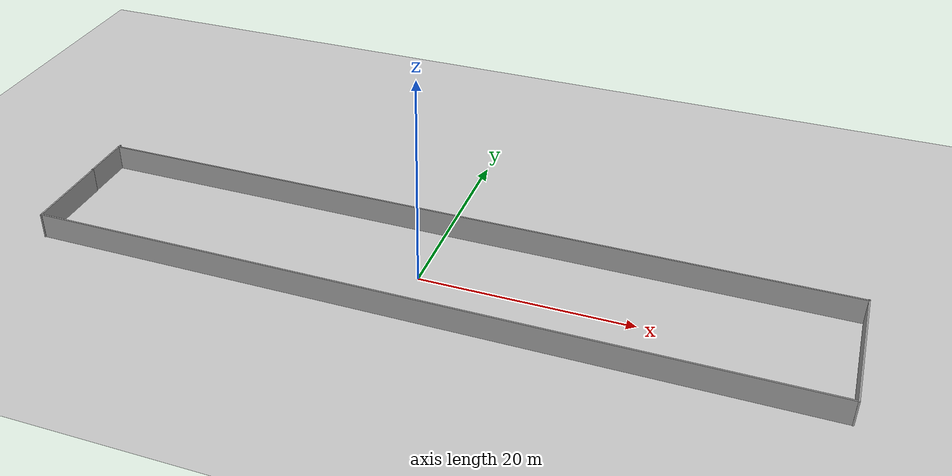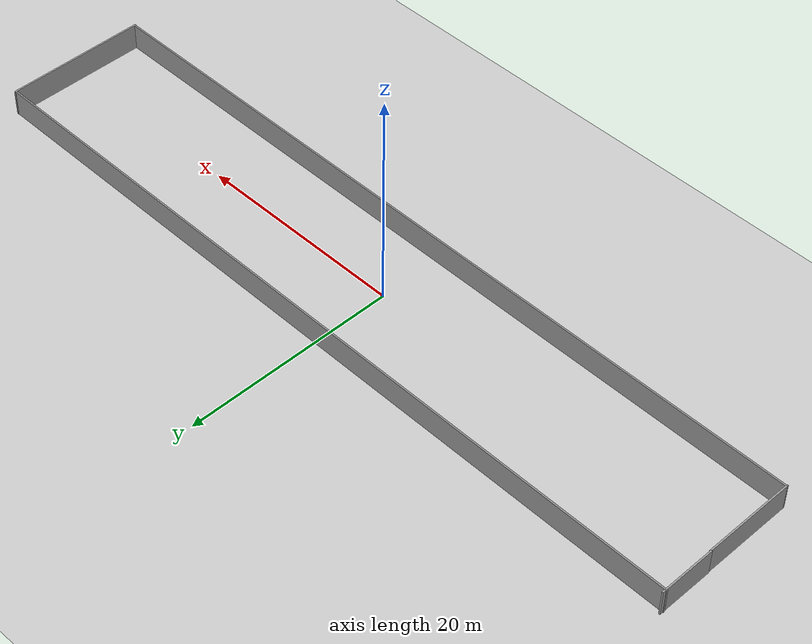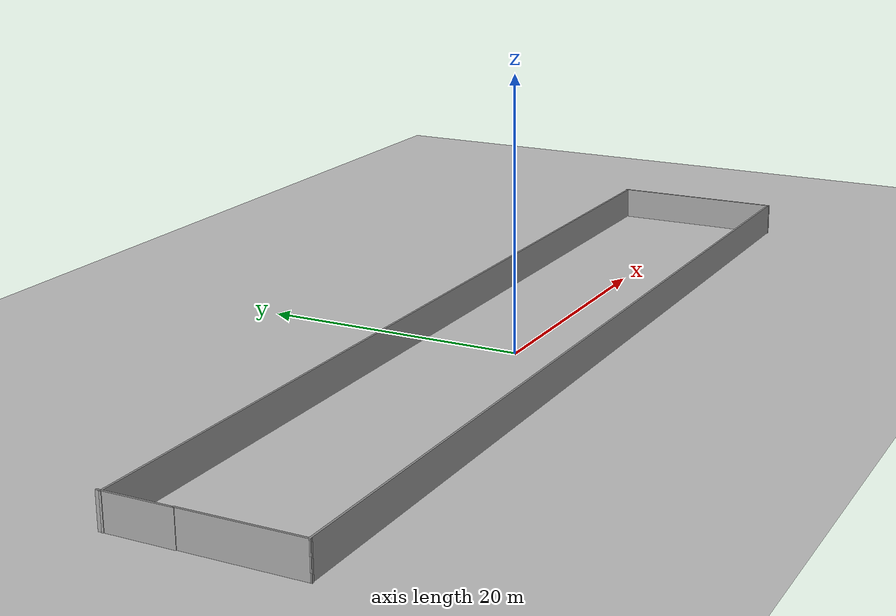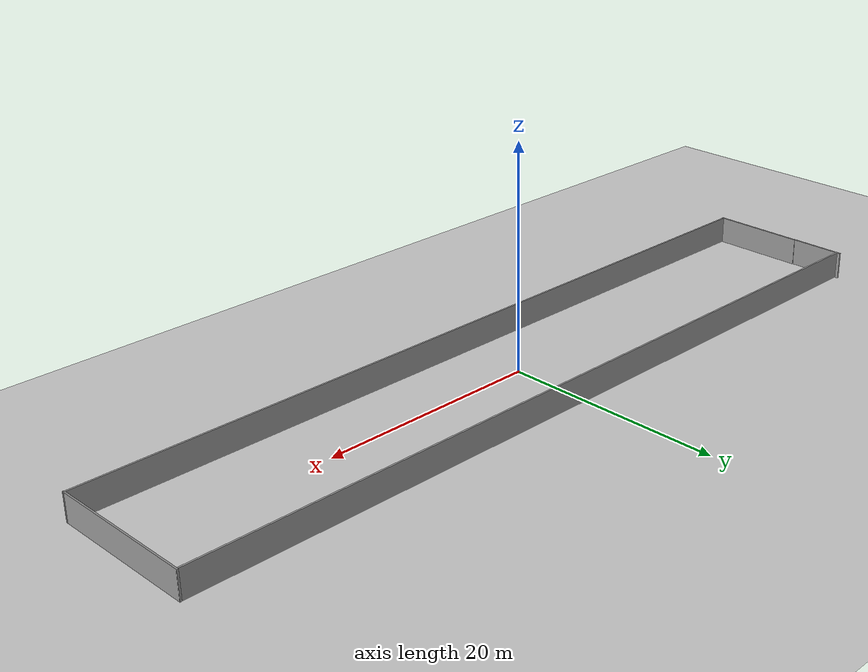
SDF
<sdf version="1.7">
 <world name="default">
  <light name="sun" type="directional">
   <pose>0 0 10 0 -0 0</pose>
   <diffuse>0.8 0.8 0.8 1</diffuse>
   <specular>0.2 0.2 0.2 1</specular>
   <attenuation>
    <range>1000</range>
    <constant>0.9</constant>
    <linear>0.01</linear>
    <quadratic>0.001</quadratic>
   </attenuation>
   <direction>-0.5 0.1 -0.9</direction>
   <spot><inner_angle>0</inner_angle><outer_angle>0</outer_angle><falloff>0</falloff></spot>
  </light>
  <model name="ground_plane">
   <static>1</static>
   <link name="link">
    <collision name="collision">
     <geometry><plane><normal>0 0 1</normal><size>100 100</size></plane></geometry>
     <surface><friction><ode><mu>100</mu><mu2>50</mu2></ode></friction></surface>
    </collision>
    <visual name="visual">
     <cast_shadows>0</cast_shadows>
     <geometry><plane><normal>0 0 1</normal><size>100 100</size></plane></geometry>
     <material>
      <script><uri>file://media/materials/scripts/gazebo.material</uri><name>Gazebo/Grey</name></script>
     </material>
    </visual>
   </link>
  </model>
  <gravity>0 0 -9.8</gravity>
  <magnetic_field>6e-06 2.3e-05 -4.2e-05</magnetic_field>
  <atmosphere type="adiabatic"/>
  <physics type="ode">
   <max_step_size>0.001</max_step_size>
   <real_time_factor>1</real_time_factor>
   <real_time_update_rate>1000</real_time_update_rate>
  </physics>
  <scene><ambient>0.4 0.4 0.4 1</ambient><background>0.7 0.7 0.7 1</background><shadows>1</shadows></scene>
  <spherical_coordinates>
   <surface_model>EARTH_WGS84</surface_model>
   <latitude_deg>0</latitude_deg>
   <longitude_deg>0</longitude_deg>
   <elevation>0</elevation>
   <heading_deg>0</heading_deg>
  </spherical_coordinates>
  <model name="single_corridor">
   <pose>1.33127 0.798588 0 0 -0 0</pose>
   <link name="Wall_4">
    <collision name="Wall_4_Collision">
     <geometry><box><size>5.25 0.15 2.5</size></box></geometry>
     <pose>0 0 1.25 0 -0 0</pose>
    </collision>
    <visual name="Wall_4_Visual">
     <pose>0 0 1.25 0 -0 0</pose>
     <geometry><box><size>5.25 0.15 2.5</size></box></geometry>
     <material>
      <script><uri>file://media/materials/scripts/gazebo.material</uri><name>Gazebo/Grey</name></script>
      <ambient>1 1 1 1</ambient>
     </material>
     <meta><layer>0</layer></meta>
    </visual>
    <pose>-36.9627 4.38119 0 0 -0 -1.5708</pose>
   </link>
   <link name="Wall_5">
    <collision name="Wall_5_Collision">
     <geometry><box><size>8.69786 0.15 2.5</size></box></geometry>
     <pose>0 0 1.25 0 -0 0</pose>
    </collision>
    <visual name="Wall_5_Visual">
     <pose>0 0 1.25 0 -0 0</pose>
     <geometry><box><size>8.69786 0.15 2.5</size></box></geometry>
     <material>
      <script><uri>file://media/materials/scripts/gazebo.material</uri><name>Gazebo/Grey</name></script>
      <ambient>1 1 1 1</ambient>
     </material>
     <meta><layer>0</layer></meta>
    </visual>
    <pose>-36.9161 -2.44274 0 0 -0 -1.5708</pose>
   </link>
   <link name="Wall_6">
    <collision name="Wall_6_Collision">
     <geometry><box><size>74.0753 0.15 2.5</size></box></geometry>
     <pose>0 0 1.25 0 -0 0</pose>
    </collision>
    <visual name="Wall_6_Visual">
     <pose>0 0 1.25 0 -0 0</pose>
     <geometry><box><size>74.0753 0.15 2.5</size></box></geometry>
     <material>
      <script><uri>file://media/materials/scripts/gazebo.material</uri><name>Gazebo/Grey</name></script>
      <ambient>1 1 1 1</ambient>
     </material>
     <meta><layer>0</layer></meta>
    </visual>
    <pose>0.04638 -6.77715 0 0 -0 -0.002895</pose>
   </link>
   <link name="Wall_7">
    <collision name="Wall_7_Collision">
     <geometry><box><size>13.5586 0.15 2.5</size></box></geometry>
     <pose>0 0 1.25 0 -0 0</pose>
    </collision>
    <visual name="Wall_7_Visual">
     <pose>0 0 1.25 0 -0 0</pose>
     <geometry><box><size>13.5586 0.15 2.5</size></box></geometry>
     <material>
      <script><uri>file://media/materials/scripts/gazebo.material</uri><name>Gazebo/Grey</name></script>
      <ambient>1 1 1 1</ambient>
     </material>
     <meta><layer>0</layer></meta>
    </visual>
    <pose>36.9624 -0.226532 0 0 -0 1.57774</pose>
   </link>
   <link name="Wall_8">
    <collision name="Wall_8_Collision">
     <geometry><box><size>74.0753 0.15 2.5</size></box></geometry>
     <pose>0 0 1.25 0 -0 0</pose>
    </collision>
    <visual name="Wall_8_Visual">
     <pose>0 0 1.25 0 -0 0</pose>
     <geometry><box><size>74.0753 0.15 2.5</size></box></geometry>
     <material>
      <script><uri>file://media/materials/scripts/gazebo.material</uri><name>Gazebo/Grey</name></script>
      <ambient>1 1 1 1</ambient>
     </material>
     <meta><layer>0</layer></meta>
    </visual>
    <pose>-0.046669 6.53809 0 0 -0 3.1387</pose>
   </link>
   <static>1</static>
  </model>
 </world>
</sdf>
